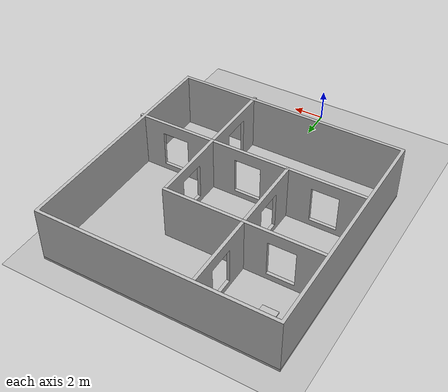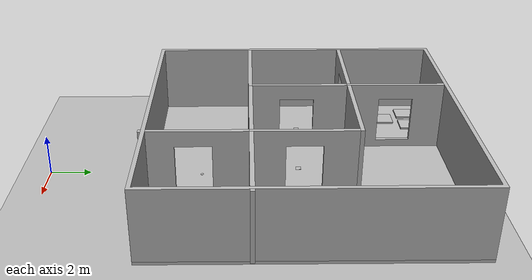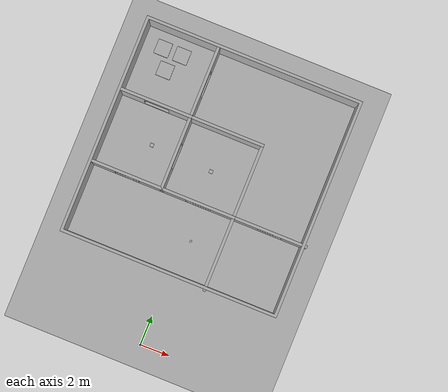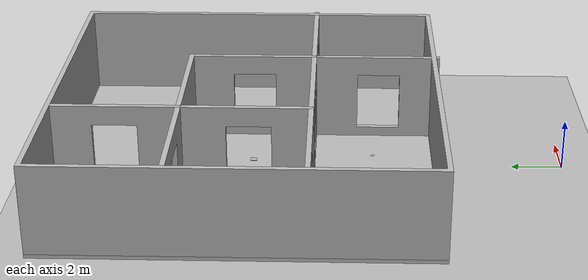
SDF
<sdf version="1.9">
 <world name="iris_runway">
  <physics name="1ms" type="ignore">
   <max_step_size>0.001</max_step_size>
   <real_time_factor>1.0</real_time_factor>
  </physics>
  <plugin filename="gz-sim-physics-system" name="gz::sim::systems::Physics"/>
  <plugin filename="gz-sim-sensors-system" name="gz::sim::systems::Sensors">
   <render_engine>ogre2</render_engine>
  </plugin>
  <plugin filename="gz-sim-user-commands-system" name="gz::sim::systems::UserCommands"/>
  <plugin filename="gz-sim-scene-broadcaster-system" name="gz::sim::systems::SceneBroadcaster"/>
  <plugin filename="gz-sim-imu-system" name="gz::sim::systems::Imu"/>
  <plugin filename="gz-sim-navsat-system" name="gz::sim::systems::NavSat"/>
  <scene><ambient>1.0 1.0 1.0</ambient><background>0.8 0.8 0.8</background></scene>
  <spherical_coordinates>
   <latitude_deg>-35.363262</latitude_deg>
   <longitude_deg>149.165237</longitude_deg>
   <elevation>584</elevation>
   <heading_deg>0</heading_deg>
   <surface_model>EARTH_WGS84</surface_model>
  </spherical_coordinates>
  <light type="directional" name="sun">
   <pose>0 0 10 0 0 0</pose>
   <diffuse>0.8 0.8 0.8 1</diffuse>
   <specular>0.8 0.8 0.8 1</specular>
   <attenuation>
    <range>1000</range>
    <constant>0.9</constant>
    <linear>0.01</linear>
    <quadratic>0.001</quadratic>
   </attenuation>
   <direction>-0.5 0.1 -0.9</direction>
  </light>
  <model name="axes">
   <static>1</static>
   <link name="link">
    <sensor name="navsat_sensor" type="navsat"><always_on>1</always_on><update_rate>1</update_rate></sensor>
   </link>
  </model>
  <include><uri>model://ground_my</uri></include>
  <include>
   <name>walls</name>
   <uri>model://house_scene_2_walls_out</uri>
   <static>true</static>
   <pose>0 12.5 0 0 0 0</pose>
  </include>
  <include>
   <name>task0_red_circle</name>
   <uri>model://figure_circle_red</uri>
   <static>true</static>
   <pose>0.52 7.56 0.18 0 0 0</pose>
  </include>
  <include>
   <name>wall1</name>
   <uri>model://house_scene_2_wall_1</uri>
   <static>true</static>
   <pose>0 12.5 0 0 0 0</pose>
  </include>
  <include>
   <name>wall2</name>
   <uri>model://house_scene_2_wall_2</uri>
   <static>true</static>
   <pose>0 12.5 0 0 0 0</pose>
  </include>
  <include>
   <name>wall3</name>
   <uri>model://house_scene_2_wall_3</uri>
   <static>true</static>
   <pose>0 12.5 0 0 0 0</pose>
  </include>
  <include>
   <name>wall6</name>
   <uri>model://house_scene_2_wall_6</uri>
   <static>true</static>
   <pose>0 12.5 0 0 0 0</pose>
  </include>
  <include>
   <name>wall7</name>
   <uri>model://house_scene_2_wall_7</uri>
   <static>true</static>
   <pose>0 12.5 0 0 0 0</pose>
  </include>
  <include>
   <name>wall8</name>
   <uri>model://house_scene_2_wall_8</uri>
   <static>true</static>
   <pose>0 12.5 0 0 0 0</pose>
  </include>
  <include>
   <name>wall9</name>
   <uri>model://house_scene_2_wall_9</uri>
   <static>true</static>
   <pose>0 12.5 0 0 0 0</pose>
  </include>
  <include>
   <name>wall10</name>
   <uri>model://house_scene_2_wall_10</uri>
   <static>true</static>
   <pose>0 12.5 0 0 0 0</pose>
  </include>
  <include>
   <name>wall12</name>
   <uri>model://house_scene_2_wall_12</uri>
   <static>true</static>
   <pose>0 12.5 0 0 0 0</pose>
  </include>
  <include>
   <name>qr4</name>
   <uri>model://11qr_without_car</uri>
   <static>false</static>
   <pose>-4.25 12.49 0.1 0 0 0</pose>
  </include>
  <include>
   <name>qr5</name>
   <uri>model://9qr_without_car</uri>
   <static>false</static>
   <pose>0.035 12.33 0.1 0 0 0</pose>
  </include>
  <include><uri>model://platform</uri><static>false</static><pose>-6.1695 12.49 0.27 0 0 0</pose></include>
  <include><uri>model://platform_scnd</uri><static>false</static><pose>-5.29 17.4187 0.27 0 0 0</pose></include>
 </world>
</sdf>

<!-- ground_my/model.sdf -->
<sdf version="1.5">
    <model name="ground">
        <static>true</static>
        <link name="link">
            <collision name="collision">
                <geometry>
                    <mesh>
                        <scale>1 1 1</scale>
                        <uri>model://ground_my/meshes/ground.dae</uri>
                    </mesh>
                    <surface>
                    <friction>
                        <ode>
                            <mu>1.2</mu>
                            <mu2>1.2</mu2>
                        </ode>
                    </friction>
                    </surface>
                </geometry>
            </collision>
            <visual name="visual">
              <geometry>
                <mesh>
                    <scale>1 1 1</scale>
                    <uri>model://ground_my/meshes/ground.dae</uri>
                </mesh>
              </geometry>
             </visual>
        </link>
    </model>
</sdf>

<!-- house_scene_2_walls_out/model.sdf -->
<sdf version="1.5">
    <model name="house_walls">
        <static>true</static>
        <link name="link">
            <collision name="collision_wall">
                <pose>0 0 0.05 0 0 0</pose>
                <geometry>
                    <mesh>
                        <uri>model://house_scene_2_walls_out/meshes/scene_2_walls_out.dae</uri>
                    </mesh>
                </geometry>
            </collision>
            <visual name="visual_walls">
              <pose>0 0 0.05 0 0 0</pose>
              <geometry>
              <mesh>
                 <uri>model://house_scene_2_walls_out/meshes/scene_2_walls_out.dae</uri>
              </mesh>
              </geometry>
             </visual>

             <collision name="collision_flor">
                <pose>0 0 0.05 0 0 0</pose>
                <geometry>
                    <mesh>
                        <uri>model://house_scene_2_walls_out/meshes/floor_c.dae</uri>
                    </mesh>
                </geometry>
            </collision>
            <visual name="visual_flor">
              <pose>0 0 0.05 0 0 0</pose>
              <geometry>
              <mesh>
                 <uri>model://house_scene_2_walls_out/meshes/floor_c.dae</uri>
              </mesh>
              </geometry>
             </visual>
        </link>
    </model>
</sdf>

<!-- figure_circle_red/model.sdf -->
<sdf version="1.5">
    <model name="figure_circle_red">
        <static>true</static>
        <link name="link">
            <collision name="collision1">
                <pose>0 0 0 0 0 0</pose>
                <geometry>
                    <mesh>
                        <uri>model://figure_circle_red/meshes/figure_circle_red.dae</uri>
                        <scale>0.15 0.15 0.15</scale>
                    </mesh>
                </geometry>
            </collision>
            <visual name="visual1">
                <pose>0 0 0 0 0 0</pose>
                <geometry>
                    <mesh>
                        <uri>model://figure_circle_red/meshes/figure_circle_red.dae</uri>
                        <scale>0.15 0.15 0.15</scale>
                    </mesh>
                </geometry>
            </visual>
        </link>
    </model>
</sdf>

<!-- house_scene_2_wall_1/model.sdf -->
<sdf version="1.5">
    <model name="house_wall_1">
        <static>true</static>
        <link name="link">
            <collision name="collision_wall">
                <pose>0 0 0.05 0 0 0</pose>
                <geometry>
                    <mesh>
                        <uri>model://house_scene_2_wall_1/meshes/sc1qr.dae</uri>
                    </mesh>
                </geometry>
            </collision>
            <visual name="visual_walls">
              <pose>0 0 0.05 0 0 0</pose>
              <geometry>
              <mesh>
                 <uri>model://house_scene_2_wall_1/meshes/sc1qr.dae</uri>
              </mesh>
              </geometry>
             </visual>
        </link>
    </model>
</sdf>

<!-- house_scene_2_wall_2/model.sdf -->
<sdf version="1.5">
    <model name="house_wall_2">
        <static>true</static>
        <link name="link">
            <collision name="collision_wall">
                <pose>0 0 0.05 0 0 0</pose>
                <geometry>
                    <mesh>
                        <uri>model://house_scene_2_wall_2/meshes/sc2qr.dae</uri>
                    </mesh>
                </geometry>
            </collision>
            <visual name="visual_walls">
              <pose>0 0 0.05 0 0 0</pose>
              <geometry>
              <mesh>
                 <uri>model://house_scene_2_wall_2/meshes/sc2qr.dae</uri>
              </mesh>
              </geometry>
             </visual>
        </link>
    </model>
</sdf>

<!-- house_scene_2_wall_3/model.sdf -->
<sdf version="1.5">
    <model name="house_wall_3">
        <static>true</static>
        <link name="link">
            <collision name="collision_wall">
                <pose>0 0 0.05 0 0 0</pose>
                <geometry>
                    <mesh>
                        <uri>model://house_scene_2_wall_3/meshes/st3.dae</uri>
                    </mesh>
                </geometry>
            </collision>
            <visual name="visual_walls">
              <pose>0 0 0.05 0 0 0</pose>
              <geometry>
              <mesh>
                 <uri>model://house_scene_2_wall_3/meshes/st3.dae</uri>
              </mesh>
              </geometry>
             </visual>
        </link>
    </model>
</sdf>

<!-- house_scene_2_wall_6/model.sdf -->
<sdf version="1.5">
    <model name="house_wall_6">
        <static>true</static>
        <link name="link">
            <collision name="collision_wall">
                <pose>0 0 0.05 0 0 0</pose>
                <geometry>
                    <mesh>
                        <uri>model://house_scene_2_wall_6/meshes/sc6qr.dae</uri>
                    </mesh>
                </geometry>
            </collision>
            <visual name="visual_walls">
              <pose>0 0 0.05 0 0 0</pose>
              <geometry>
              <mesh>
                 <uri>model://house_scene_2_wall_6/meshes/sc6qr.dae</uri>
              </mesh>
              </geometry>
             </visual>
        </link>
    </model>
</sdf>

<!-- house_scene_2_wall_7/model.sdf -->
<sdf version="1.5">
    <model name="house_wall_7">
        <static>true</static>
        <link name="link">
            <collision name="collision_wall">
                <pose>0 0 0.05 0 0 0</pose>
                <geometry>
                    <mesh>
                        <uri>model://house_scene_2_wall_7/meshes/sc7qr.dae</uri>
                    </mesh>
                </geometry>
            </collision>
            <visual name="visual_walls">
              <pose>0 0 0.05 0 0 0</pose>
              <geometry>
              <mesh>
                 <uri>model://house_scene_2_wall_7/meshes/sc7qr.dae</uri>
              </mesh>
              </geometry>
             </visual>
        </link>
    </model>
</sdf>

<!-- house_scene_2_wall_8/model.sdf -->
<sdf version="1.5">
    <model name="house_wall_8">
        <static>true</static>
        <link name="link">
            <collision name="collision_wall">
                <pose>0 0 0.05 0 0 0</pose>
                <geometry>
                    <mesh>
                        <uri>model://house_scene_2_wall_8/meshes/sc8qr.dae</uri>
                    </mesh>
                </geometry>
            </collision>
            <visual name="visual_walls">
              <pose>0 0 0.05 0 0 0</pose>
              <geometry>
              <mesh>
                 <uri>model://house_scene_2_wall_8/meshes/sc8qr.dae</uri>
              </mesh>
              </geometry>
             </visual>
        </link>
    </model>
</sdf>

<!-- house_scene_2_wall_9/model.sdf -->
<sdf version="1.5">
    <model name="house_wall_9">
        <static>true</static>
        <link name="link">
            <collision name="collision_wall">
                <pose>0 0 0.05 0 0 0</pose>
                <geometry>
                    <mesh>
                        <uri>model://house_scene_2_wall_9/meshes/sc9qr.dae</uri>
                    </mesh>
                </geometry>
            </collision>
            <visual name="visual_walls">
              <pose>0 0 0.05 0 0 0</pose>
              <geometry>
              <mesh>
                 <uri>model://house_scene_2_wall_9/meshes/sc9qr.dae</uri>
              </mesh>
              </geometry>
             </visual>
        </link>
    </model>
</sdf>

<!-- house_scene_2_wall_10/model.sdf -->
<sdf version="1.5">
    <model name="house_wall_10">
        <static>true</static>
        <link name="link">
            <collision name="collision_wall">
                <pose>0 0 0.05 0 0 0</pose>
                <geometry>
                    <mesh>
                        <uri>model://house_scene_2_wall_10/meshes/sc10qr.dae</uri>
                    </mesh>
                </geometry>
            </collision>
            <visual name="visual_walls">
              <pose>0 0 0.05 0 0 0</pose>
              <geometry>
              <mesh>
                 <uri>model://house_scene_2_wall_10/meshes/sc10qr.dae</uri>
              </mesh>
              </geometry>
             </visual>
        </link>
    </model>
</sdf>

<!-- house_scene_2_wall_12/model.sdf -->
<sdf version="1.5">
    <model name="house_wall_12">
        <static>true</static>
        <link name="link">
            <collision name="collision_wall">
                <pose>0 0 0.05 0 0 0</pose>
                <geometry>
                    <mesh>
                        <uri>model://house_scene_2_wall_12/meshes/cs12_qr.dae</uri>
                    </mesh>
                </geometry>
            </collision>
            <visual name="visual_walls">
              <pose>0 0 0.05 0 0 0</pose>
              <geometry>
              <mesh>
                 <uri>model://house_scene_2_wall_12/meshes/cs12_qr.dae</uri>
              </mesh>
              </geometry>
             </visual>
        </link>
    </model>
</sdf>

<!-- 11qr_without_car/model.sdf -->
<sdf version="1.5">
    <model name='qr11'>
      <static>true</static>
        <link name="qr11">
             <collision name="collision">
                <pose>0 0 0.1 0 0 0</pose>
                <geometry>
                    <mesh>
                        <uri>model://11qr_without_car/meshes/qr.stl</uri>
                    </mesh>
                </geometry>
            </collision>
            <visual name="visual">
              <pose>0 0 0.1 0 0 0</pose>
              <geometry>
              <mesh>
                 <uri>model://11qr_without_car/meshes/qr11.dae</uri>
              </mesh>
              </geometry>
             </visual>
        </link>

    </model>
</sdf>

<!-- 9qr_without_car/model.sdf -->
<sdf version="1.5">
    <model name='qr9'>
      <static>true</static>
        <link name="qr9">
             <collision name="collision">
                <pose>0 0 0.1 0 0 0</pose>
                <geometry>
                    <mesh>
                        <uri>model://9qr_without_car/meshes/qr.stl</uri>
                    </mesh>
                </geometry>
            </collision>
            <visual name="visual">
              <pose>0 0 0.1 0 0 0</pose>
              <geometry>
              <mesh>
                 <uri>model://9qr_without_car/meshes/qr9.dae</uri>
              </mesh>
              </geometry>
             </visual>
        </link>

    </model>
</sdf>

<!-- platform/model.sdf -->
<sdf version="1.6">
  <model name="platform">
    <static>false</static>
    <link name="dummy_upper"/>

    <joint name="world_joint" type="fixed">
      <parent>world</parent>
      <child>dummy_upper</child>
    </joint>
  </model>
</sdf>

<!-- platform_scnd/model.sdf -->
<sdf version="1.5">
    <model name="platform_scnd">
        <static>true</static>
        <link name="link">
            <collision name="collision">
                <pose>0 0 0 0 0 0</pose>
                <geometry>
                    <mesh>
                        <uri>model://platform_scnd/meshes/metki.dae</uri>
                    </mesh>
                </geometry>
            </collision>
            <visual name="visual">
              <pose>0 0 0 0 0 0</pose>
              <geometry>
              <mesh>
                 <uri>model://platform_scnd/meshes/metki.dae</uri>
              </mesh>
              </geometry>
             </visual>
        </link>
    </model>
</sdf>
